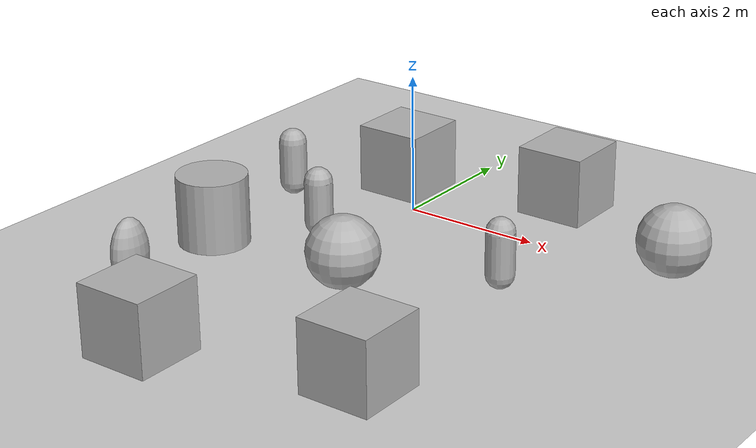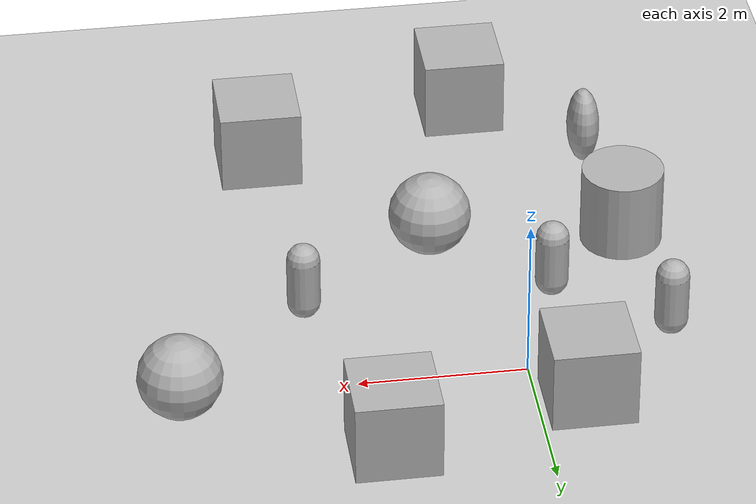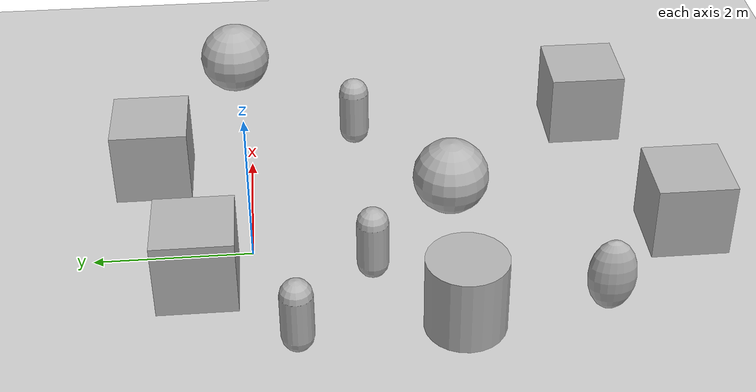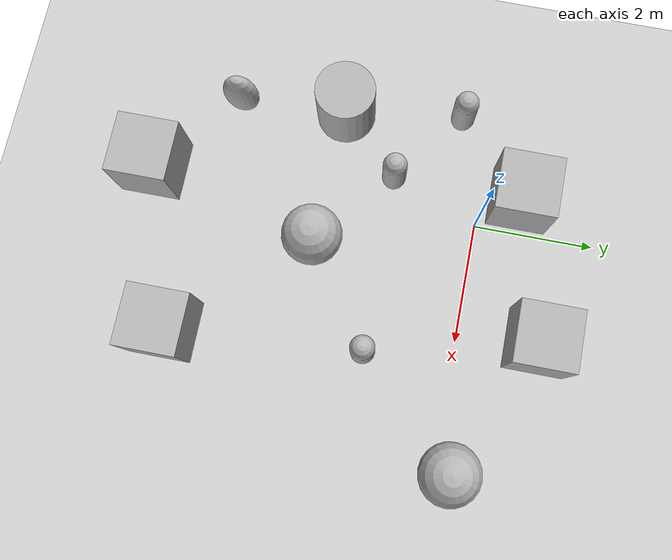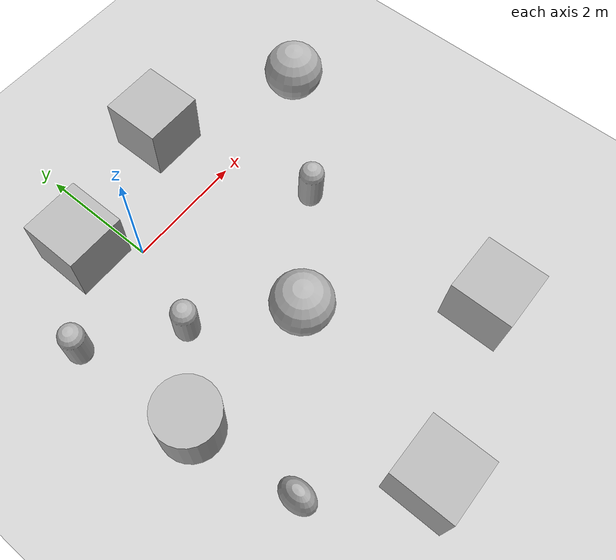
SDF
<sdf version='1.9'>
  <world name='empty'>
    <physics name='1ms' type='ignored'>
      <max_step_size>0.001</max_step_size>
      <real_time_factor>1</real_time_factor>
      <real_time_update_rate>1000</real_time_update_rate>
    </physics>
    <plugin name='ignition::gazebo::systems::Physics' filename='ignition-gazebo-physics-system'/>
    <plugin name='ignition::gazebo::systems::UserCommands' filename='ignition-gazebo-user-commands-system'/>
    <plugin name='ignition::gazebo::systems::SceneBroadcaster' filename='ignition-gazebo-scene-broadcaster-system'/>
    <plugin name='ignition::gazebo::systems::Contact' filename='ignition-gazebo-contact-system'/>
    <gui fullscreen='false'>
      <plugin name='3D View' filename='MinimalScene'>
        <ignition-gui>
          <title>3D View</title>
          <property type='bool' key='showTitleBar'>false</property>
          <property type='string' key='state'>docked</property>
        </ignition-gui>
        <engine>ogre2</engine>
        <scene>scene</scene>
        <ambient_light>0.4 0.4 0.4</ambient_light>
        <background_color>0.8 0.8 0.8</background_color>
        <camera_pose>-6 0 6 0 0.5 0</camera_pose>
      </plugin>
      <plugin name='Entity context menu' filename='EntityContextMenuPlugin'>
        <ignition-gui>
          <property key='state' type='string'>floating</property>
          <property key='width' type='double'>5</property>
          <property key='height' type='double'>5</property>
          <property key='showTitleBar' type='bool'>false</property>
        </ignition-gui>
      </plugin>
      <plugin name='Scene Manager' filename='GzSceneManager'>
        <ignition-gui>
          <property key='resizable' type='bool'>false</property>
          <property key='width' type='double'>5</property>
          <property key='height' type='double'>5</property>
          <property key='state' type='string'>floating</property>
          <property key='showTitleBar' type='bool'>false</property>
        </ignition-gui>
      </plugin>
      <plugin name='Interactive view control' filename='InteractiveViewControl'>
        <ignition-gui>
          <property key='resizable' type='bool'>false</property>
          <property key='width' type='double'>5</property>
          <property key='height' type='double'>5</property>
          <property key='state' type='string'>floating</property>
          <property key='showTitleBar' type='bool'>false</property>
        </ignition-gui>
      </plugin>
      <plugin name='Camera Tracking' filename='CameraTracking'>
        <ignition-gui>
          <property key='resizable' type='bool'>false</property>
          <property key='width' type='double'>5</property>
          <property key='height' type='double'>5</property>
          <property key='state' type='string'>floating</property>
          <property key='showTitleBar' type='bool'>false</property>
        </ignition-gui>
      </plugin>
      <plugin name='World control' filename='WorldControl'>
        <ignition-gui>
          <title>World control</title>
          <property type='bool' key='showTitleBar'>false</property>
          <property type='bool' key='resizable'>false</property>
          <property type='double' key='height'>72</property>
          <property type='double' key='width'>121</property>
          <property type='double' key='z'>1</property>
          <property type='string' key='state'>floating</property>
          <anchors target='3D View'>
            <line own='left' target='left'/>
            <line own='bottom' target='bottom'/>
          </anchors>
        </ignition-gui>
        <play_pause>true</play_pause>
        <step>true</step>
        <start_paused>true</start_paused>
        <use_event>true</use_event>
      </plugin>
      <plugin name='World stats' filename='WorldStats'>
        <ignition-gui>
          <title>World stats</title>
          <property type='bool' key='showTitleBar'>false</property>
          <property type='bool' key='resizable'>false</property>
          <property type='double' key='height'>110</property>
          <property type='double' key='width'>290</property>
          <property type='double' key='z'>1</property>
          <property type='string' key='state'>floating</property>
          <anchors target='3D View'>
            <line own='right' target='right'/>
            <line own='bottom' target='bottom'/>
          </anchors>
        </ignition-gui>
        <sim_time>true</sim_time>
        <real_time>true</real_time>
        <real_time_factor>true</real_time_factor>
        <iterations>true</iterations>
      </plugin>
      <plugin name='Visualize Lidar' filename='VisualizeLidar'/>
      <plugin name='Component inspector' filename='ComponentInspector'>
        <ignition-gui>
          <property type='string' key='state'>docked</property>
        </ignition-gui>
      </plugin>
      <plugin name='Entity tree' filename='EntityTree'>
        <ignition-gui>
          <property type='string' key='state'>docked</property>
        </ignition-gui>
      </plugin>
    </gui>
    <gravity>0 0 -9.8</gravity>
    <magnetic_field>6e-06 2.3e-05 -4.2e-05</magnetic_field>
    <atmosphere type='adiabatic'/>
    <scene>
      <ambient>0.4 0.4 0.4 1</ambient>
      <background>0.7 0.7 0.7 1</background>
      <shadows>true</shadows>
    </scene>
    <model name='ground_plane'>
      <static>true</static>
      <link name='link'>
        <collision name='collision'>
          <geometry>
            <plane>
              <normal>0 0 1</normal>
              <size>100 100</size>
            </plane>
          </geometry>
          <surface>
            <friction>
              <ode/>
            </friction>
            <bounce/>
            <contact/>
          </surface>
        </collision>
        <visual name='visual'>
          <geometry>
            <plane>
              <normal>0 0 1</normal>
              <size>100 100</size>
            </plane>
          </geometry>
          <material>
            <ambient>0.8 0.8 0.8 1</ambient>
            <diffuse>0.8 0.8 0.8 1</diffuse>
            <specular>0.8 0.8 0.8 1</specular>
          </material>
        </visual>
        <pose>0 0 0 0 -0 0</pose>
        <inertial>
          <pose>0 0 0 0 -0 0</pose>
          <mass>1</mass>
          <inertia>
            <ixx>1</ixx>
            <ixy>0</ixy>
            <ixz>0</ixz>
            <iyy>1</iyy>
            <iyz>0</iyz>
            <izz>1</izz>
          </inertia>
        </inertial>
        <enable_wind>false</enable_wind>
      </link>
      <pose>0 0 0 0 -0 0</pose>
      <self_collide>false</self_collide>
    </model>
    <model name='box'>
      <pose>1.76511 1.30719 0.5 0 -0 0</pose>
      <link name='box_link'>
        <inertial>
          <inertia>
            <ixx>0.16666</ixx>
            <ixy>0</ixy>
            <ixz>0</ixz>
            <iyy>0.16666</iyy>
            <iyz>0</iyz>
            <izz>0.16666</izz>
          </inertia>
          <mass>1</mass>
          <pose>0 0 0 0 -0 0</pose>
        </inertial>
        <collision name='box_collision'>
          <geometry>
            <box>
              <size>1 1 1</size>
            </box>
          </geometry>
          <surface>
            <friction>
              <ode/>
            </friction>
            <bounce/>
            <contact/>
          </surface>
        </collision>
        <visual name='box_visual'>
          <geometry>
            <box>
              <size>1 1 1</size>
            </box>
          </geometry>
          <material>
            <ambient>0.3 0.3 0.3 1</ambient>
            <diffuse>0.7 0.7 0.7 1</diffuse>
            <specular>1 1 1 1</specular>
          </material>
        </visual>
        <pose>0 0 0 0 -0 0</pose>
        <enable_wind>false</enable_wind>
      </link>
      <static>false</static>
      <self_collide>false</self_collide>
    </model>
    <model name='box_0'>
      <pose>-0.583712 0.67418 0.5 0 -0 0</pose>
      <link name='box_link'>
        <inertial>
          <inertia>
            <ixx>0.16666</ixx>
            <ixy>0</ixy>
            <ixz>0</ixz>
            <iyy>0.16666</iyy>
            <iyz>0</iyz>
            <izz>0.16666</izz>
          </inertia>
          <mass>1</mass>
          <pose>0 0 0 0 -0 0</pose>
        </inertial>
        <collision name='box_collision'>
          <geometry>
            <box>
              <size>1 1 1</size>
            </box>
          </geometry>
          <surface>
            <friction>
              <ode/>
            </friction>
            <bounce/>
            <contact/>
          </surface>
        </collision>
        <visual name='box_visual'>
          <geometry>
            <box>
              <size>1 1 1</size>
            </box>
          </geometry>
          <material>
            <ambient>0.3 0.3 0.3 1</ambient>
            <diffuse>0.7 0.7 0.7 1</diffuse>
            <specular>1 1 1 1</specular>
          </material>
        </visual>
        <pose>0 0 0 0 -0 0</pose>
        <enable_wind>false</enable_wind>
      </link>
      <static>false</static>
      <self_collide>false</self_collide>
    </model>
    <model name='sphere'>
      <pose>0.777795 -2.60543 0.5 0 -0 0</pose>
      <link name='sphere_link'>
        <inertial>
          <inertia>
            <ixx>0.10000000000000001</ixx>
            <ixy>0</ixy>
            <ixz>0</ixz>
            <iyy>0.10000000000000001</iyy>
            <iyz>0</iyz>
            <izz>0.10000000000000001</izz>
          </inertia>
          <mass>1</mass>
          <pose>0 0 0 0 -0 0</pose>
        </inertial>
        <collision name='sphere_collision'>
          <geometry>
            <sphere>
              <radius>0.5</radius>
            </sphere>
          </geometry>
          <surface>
            <friction>
              <ode/>
            </friction>
            <bounce/>
            <contact/>
          </surface>
        </collision>
        <visual name='sphere_visual'>
          <geometry>
            <sphere>
              <radius>0.5</radius>
            </sphere>
          </geometry>
          <material>
            <ambient>0.3 0.3 0.3 1</ambient>
            <diffuse>0.7 0.7 0.7 1</diffuse>
            <specular>1 1 1 1</specular>
          </material>
        </visual>
        <pose>0 0 0 0 -0 0</pose>
        <enable_wind>false</enable_wind>
      </link>
      <static>false</static>
      <self_collide>false</self_collide>
    </model>
    <model name='cylinder'>
      <pose>-1.56795 -2.5036 0.5 0 -0 0</pose>
      <link name='cylinder_link'>
        <inertial>
          <inertia>
            <ixx>0.14580000000000001</ixx>
            <ixy>0</ixy>
            <ixz>0</ixz>
            <iyy>0.14580000000000001</iyy>
            <iyz>0</iyz>
            <izz>0.125</izz>
          </inertia>
          <mass>1</mass>
          <pose>0 0 0 0 -0 0</pose>
        </inertial>
        <collision name='cylinder_collision'>
          <geometry>
            <cylinder>
              <radius>0.5</radius>
              <length>1</length>
            </cylinder>
          </geometry>
          <surface>
            <friction>
              <ode/>
            </friction>
            <bounce/>
            <contact/>
          </surface>
        </collision>
        <visual name='cylinder_visual'>
          <geometry>
            <cylinder>
              <radius>0.5</radius>
              <length>1</length>
            </cylinder>
          </geometry>
          <material>
            <ambient>0.3 0.3 0.3 1</ambient>
            <diffuse>0.7 0.7 0.7 1</diffuse>
            <specular>1 1 1 1</specular>
          </material>
        </visual>
        <pose>0 0 0 0 -0 0</pose>
        <enable_wind>false</enable_wind>
      </link>
      <static>false</static>
      <self_collide>false</self_collide>
    </model>
    <model name='box_1'>
      <pose>2.64818 -4.68431 0.5 0 -0 0</pose>
      <link name='box_link'>
        <inertial>
          <inertia>
            <ixx>0.16666</ixx>
            <ixy>0</ixy>
            <ixz>0</ixz>
            <iyy>0.16666</iyy>
            <iyz>0</iyz>
            <izz>0.16666</izz>
          </inertia>
          <mass>1</mass>
          <pose>0 0 0 0 -0 0</pose>
        </inertial>
        <collision name='box_collision'>
          <geometry>
            <box>
              <size>1 1 1</size>
            </box>
          </geometry>
          <surface>
            <friction>
              <ode/>
            </friction>
            <bounce/>
            <contact/>
          </surface>
        </collision>
        <visual name='box_visual'>
          <geometry>
            <box>
              <size>1 1 1</size>
            </box>
          </geometry>
          <material>
            <ambient>0.3 0.3 0.3 1</ambient>
            <diffuse>0.7 0.7 0.7 1</diffuse>
            <specular>1 1 1 1</specular>
          </material>
        </visual>
        <pose>0 0 0 0 -0 0</pose>
        <enable_wind>false</enable_wind>
      </link>
      <static>false</static>
      <self_collide>false</self_collide>
    </model>
    <model name='box_2'>
      <pose>-0.022673 -5.51351 0.5 0 -0 0</pose>
      <link name='box_link'>
        <inertial>
          <inertia>
            <ixx>0.16666</ixx>
            <ixy>0</ixy>
            <ixz>0</ixz>
            <iyy>0.16666</iyy>
            <iyz>0</iyz>
            <izz>0.16666</izz>
          </inertia>
          <mass>1</mass>
          <pose>0 0 0 0 -0 0</pose>
        </inertial>
        <collision name='box_collision'>
          <geometry>
            <box>
              <size>1 1 1</size>
            </box>
          </geometry>
          <surface>
            <friction>
              <ode/>
            </friction>
            <bounce/>
            <contact/>
          </surface>
        </collision>
        <visual name='box_visual'>
          <geometry>
            <box>
              <size>1 1 1</size>
            </box>
          </geometry>
          <material>
            <ambient>0.3 0.3 0.3 1</ambient>
            <diffuse>0.7 0.7 0.7 1</diffuse>
            <specular>1 1 1 1</specular>
          </material>
        </visual>
        <pose>0 0 0 0 -0 0</pose>
        <enable_wind>false</enable_wind>
      </link>
      <static>false</static>
      <self_collide>false</self_collide>
    </model>
    <model name='sphere_0'>
      <pose>4.07589 0.219761 0.5 0 -0 0</pose>
      <link name='sphere_link'>
        <inertial>
          <inertia>
            <ixx>0.10000000000000001</ixx>
            <ixy>0</ixy>
            <ixz>0</ixz>
            <iyy>0.10000000000000001</iyy>
            <iyz>0</iyz>
            <izz>0.10000000000000001</izz>
          </inertia>
          <mass>1</mass>
          <pose>0 0 0 0 -0 0</pose>
        </inertial>
        <collision name='sphere_collision'>
          <geometry>
            <sphere>
              <radius>0.5</radius>
            </sphere>
          </geometry>
          <surface>
            <friction>
              <ode/>
            </friction>
            <bounce/>
            <contact/>
          </surface>
        </collision>
        <visual name='sphere_visual'>
          <geometry>
            <sphere>
              <radius>0.5</radius>
            </sphere>
          </geometry>
          <material>
            <ambient>0.3 0.3 0.3 1</ambient>
            <diffuse>0.7 0.7 0.7 1</diffuse>
            <specular>1 1 1 1</specular>
          </material>
        </visual>
        <pose>0 0 0 0 -0 0</pose>
        <enable_wind>false</enable_wind>
      </link>
      <static>false</static>
      <self_collide>false</self_collide>
    </model>
    <model name='capsule'>
      <pose>2.45441 -1.4465 0.5 0 -0 0</pose>
      <link name='capsule_link'>
        <inertial>
          <inertia>
            <ixx>0.074153999999999998</ixx>
            <ixy>0</ixy>
            <ixz>0</ixz>
            <iyy>0.074153999999999998</iyy>
            <iyz>0</iyz>
            <izz>0.018769000000000001</izz>
          </inertia>
          <mass>1</mass>
          <pose>0 0 0 0 -0 0</pose>
        </inertial>
        <collision name='capsule_collision'>
          <geometry>
            <capsule>
              <radius>0.20000000000000001</radius>
              <length>0.59999999999999998</length>
            </capsule>
          </geometry>
          <surface>
            <friction>
              <ode/>
            </friction>
            <bounce/>
            <contact/>
          </surface>
        </collision>
        <visual name='capsule_visual'>
          <geometry>
            <capsule>
              <radius>0.20000000000000001</radius>
              <length>0.59999999999999998</length>
            </capsule>
          </geometry>
          <material>
            <ambient>0.3 0.3 0.3 1</ambient>
            <diffuse>0.7 0.7 0.7 1</diffuse>
            <specular>1 1 1 1</specular>
          </material>
        </visual>
        <pose>0 0 0 0 -0 0</pose>
        <enable_wind>false</enable_wind>
      </link>
      <static>false</static>
      <self_collide>false</self_collide>
    </model>
    <model name='ellipsoid'>
      <pose>-1.40612 -4.27021 0.5 0 -0 0</pose>
      <link name='ellipsoid_link'>
        <inertial>
          <inertia>
            <ixx>0.068000000000000005</ixx>
            <ixy>0</ixy>
            <ixz>0</ixz>
            <iyy>0.058000000000000003</iyy>
            <iyz>0</iyz>
            <izz>0.025999999999999999</izz>
          </inertia>
          <mass>1</mass>
          <pose>0 0 0 0 -0 0</pose>
        </inertial>
        <collision name='ellipsoid_collision'>
          <geometry>
            <ellipsoid>
              <radii>0.2 0.3 0.5</radii>
            </ellipsoid>
          </geometry>
          <surface>
            <friction>
              <ode/>
            </friction>
            <bounce/>
            <contact/>
          </surface>
        </collision>
        <visual name='ellipsoid_visual'>
          <geometry>
            <ellipsoid>
              <radii>0.2 0.3 0.5</radii>
            </ellipsoid>
          </geometry>
          <material>
            <ambient>0.3 0.3 0.3 1</ambient>
            <diffuse>0.7 0.7 0.7 1</diffuse>
            <specular>1 1 1 1</specular>
          </material>
        </visual>
        <pose>0 0 0 0 -0 0</pose>
        <enable_wind>false</enable_wind>
      </link>
      <static>false</static>
      <self_collide>false</self_collide>
    </model>
    <model name='capsule_0'>
      <pose>-1.79424 -0.514111 0.5 0 -0 0</pose>
      <link name='capsule_link'>
        <inertial>
          <inertia>
            <ixx>0.074153999999999998</ixx>
            <ixy>0</ixy>
            <ixz>0</ixz>
            <iyy>0.074153999999999998</iyy>
            <iyz>0</iyz>
            <izz>0.018769000000000001</izz>
          </inertia>
          <mass>1</mass>
          <pose>0 0 0 0 -0 0</pose>
        </inertial>
        <collision name='capsule_collision'>
          <geometry>
            <capsule>
              <radius>0.20000000000000001</radius>
              <length>0.59999999999999998</length>
            </capsule>
          </geometry>
          <surface>
            <friction>
              <ode/>
            </friction>
            <bounce/>
            <contact/>
          </surface>
        </collision>
        <visual name='capsule_visual'>
          <geometry>
            <capsule>
              <radius>0.20000000000000001</radius>
              <length>0.59999999999999998</length>
            </capsule>
          </geometry>
          <material>
            <ambient>0.3 0.3 0.3 1</ambient>
            <diffuse>0.7 0.7 0.7 1</diffuse>
            <specular>1 1 1 1</specular>
          </material>
        </visual>
        <pose>0 0 0 0 -0 0</pose>
        <enable_wind>false</enable_wind>
      </link>
      <static>false</static>
      <self_collide>false</self_collide>
    </model>
    <model name='capsule_1'>
      <pose>-0.53271 -1.4822 0.5 0 -0 0</pose>
      <link name='capsule_link'>
        <inertial>
          <inertia>
            <ixx>0.074153999999999998</ixx>
            <ixy>0</ixy>
            <ixz>0</ixz>
            <iyy>0.074153999999999998</iyy>
            <iyz>0</iyz>
            <izz>0.018769000000000001</izz>
          </inertia>
          <mass>1</mass>
          <pose>0 0 0 0 -0 0</pose>
        </inertial>
        <collision name='capsule_collision'>
          <geometry>
            <capsule>
              <radius>0.20000000000000001</radius>
              <length>0.59999999999999998</length>
            </capsule>
          </geometry>
          <surface>
            <friction>
              <ode/>
            </friction>
            <bounce/>
            <contact/>
          </surface>
        </collision>
        <visual name='capsule_visual'>
          <geometry>
            <capsule>
              <radius>0.20000000000000001</radius>
              <length>0.59999999999999998</length>
            </capsule>
          </geometry>
          <material>
            <ambient>0.3 0.3 0.3 1</ambient>
            <diffuse>0.7 0.7 0.7 1</diffuse>
            <specular>1 1 1 1</specular>
          </material>
        </visual>
        <pose>0 0 0 0 -0 0</pose>
        <enable_wind>false</enable_wind>
      </link>
      <static>false</static>
      <self_collide>false</self_collide>
    </model>
    <light name='sun' type='directional'>
      <pose>0 0 10 0 -0 0</pose>
      <cast_shadows>true</cast_shadows>
      <intensity>1</intensity>
      <direction>-0.5 0.1 -0.9</direction>
      <diffuse>0.8 0.8 0.8 1</diffuse>
      <specular>0.2 0.2 0.2 1</specular>
      <attenuation>
        <range>1000</range>
        <linear>0.01</linear>
        <constant>0.90000000000000002</constant>
        <quadratic>0.001</quadratic>
      </attenuation>
      <spot>
        <inner_angle>0</inner_angle>
        <outer_angle>0</outer_angle>
        <falloff>0</falloff>
      </spot>
    </light>
  </world>
</sdf>
